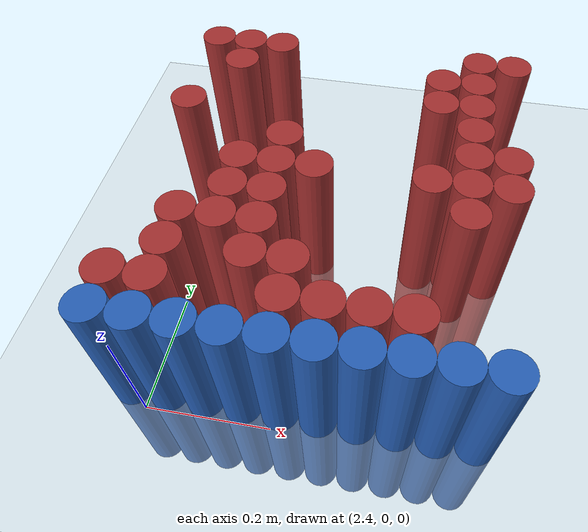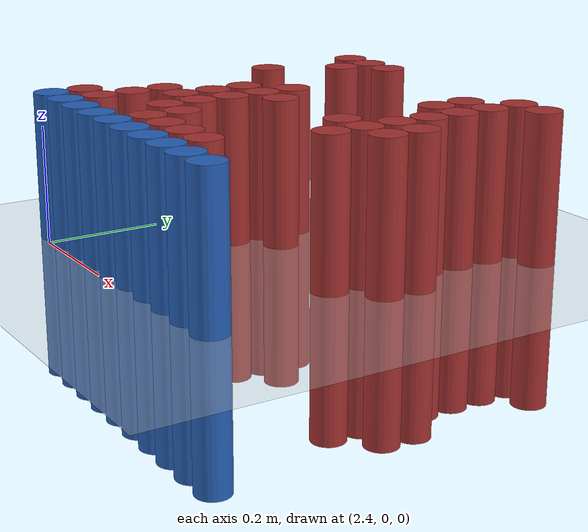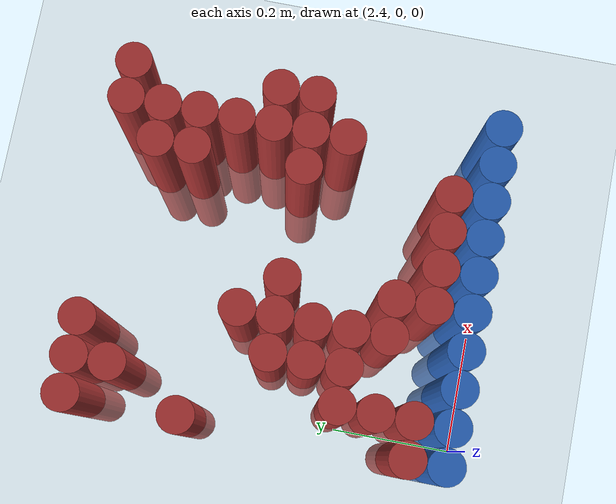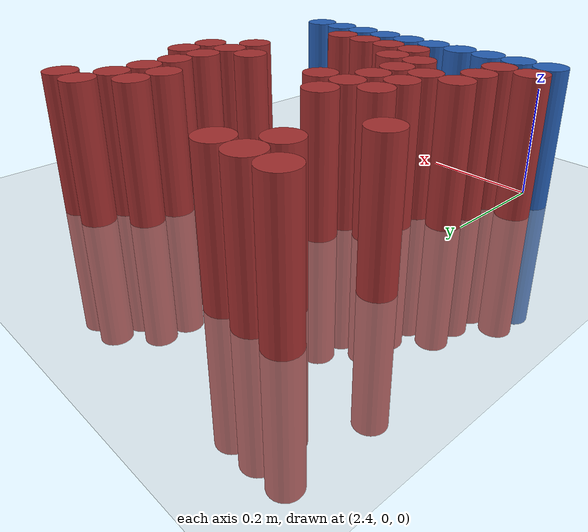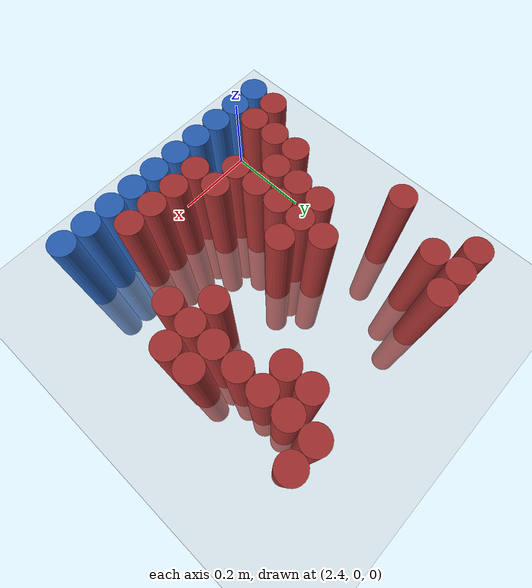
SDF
<sdf version="1.6">
 <world name="default">
  <model name="ground_plane">
   <static>1</static>
   <link name="link">
    <collision name="collision">
     <geometry><plane><normal>0 0 1</normal><size>100 100</size></plane></geometry>
     <surface><friction><ode><mu>100</mu><mu2>50</mu2></ode></friction></surface>
    </collision>
    <visual name="visual">
     <cast_shadows>0</cast_shadows>
     <geometry><plane><normal>0 0 1</normal><size>100 100</size></plane></geometry>
     <material>
      <script><uri>file://media/materials/scripts/gazebo.material</uri><name>Gazebo/Grey</name></script>
     </material>
    </visual>
   </link>
  </model>
  <model name="unit_cylinder_211">
   <static>1</static>
   <pose>2.370000 0.630000 0.000000 0.000000 0.000000 0.000000</pose>
   <link name="link">
    <inertial>
     <mass>1</mass>
     <inertia><ixx>0.145833</ixx><ixy>0</ixy><ixz>0</ixz><iyy>0.145833</iyy><iyz>0</iyz><izz>0.125</izz></inertia>
    </inertial>
    <collision name="collision">
     <geometry><cylinder><radius>0.030000</radius><length>0.5</length></cylinder></geometry>
    </collision>
    <visual name="visual">
     <geometry><cylinder><radius>0.030000</radius><length>0.5</length></cylinder></geometry>
     <material>
      <ambient>0.648000 0.192000 0.192000 1</ambient>
      <diffuse>0.648000 0.192000 0.192000 1</diffuse>
     </material>
     <material>
      <script><name>Gazebo/Grey</name><uri>file://media/materials/scripts/gazebo.material</uri></script>
     </material>
    </visual>
   </link>
  </model>
  <model name="unit_cylinder_212">
   <static>1</static>
   <pose>2.430000 0.630000 0.000000 0.000000 0.000000 0.000000</pose>
   <link name="link">
    <inertial>
     <mass>1</mass>
     <inertia><ixx>0.145833</ixx><ixy>0</ixy><ixz>0</ixz><iyy>0.145833</iyy><iyz>0</iyz><izz>0.125</izz></inertia>
    </inertial>
    <collision name="collision">
     <geometry><cylinder><radius>0.030000</radius><length>0.5</length></cylinder></geometry>
    </collision>
    <visual name="visual">
     <geometry><cylinder><radius>0.030000</radius><length>0.5</length></cylinder></geometry>
     <material>
      <ambient>0.648000 0.192000 0.192000 1</ambient>
      <diffuse>0.648000 0.192000 0.192000 1</diffuse>
     </material>
     <material>
      <script><name>Gazebo/Grey</name><uri>file://media/materials/scripts/gazebo.material</uri></script>
     </material>
    </visual>
   </link>
  </model>
  <model name="unit_cylinder_213">
   <static>1</static>
   <pose>2.490000 0.630000 0.000000 0.000000 0.000000 0.000000</pose>
   <link name="link">
    <inertial>
     <mass>1</mass>
     <inertia><ixx>0.145833</ixx><ixy>0</ixy><ixz>0</ixz><iyy>0.145833</iyy><iyz>0</iyz><izz>0.125</izz></inertia>
    </inertial>
    <collision name="collision">
     <geometry><cylinder><radius>0.030000</radius><length>0.5</length></cylinder></geometry>
    </collision>
    <visual name="visual">
     <geometry><cylinder><radius>0.030000</radius><length>0.5</length></cylinder></geometry>
     <material>
      <ambient>0.648000 0.192000 0.192000 1</ambient>
      <diffuse>0.648000 0.192000 0.192000 1</diffuse>
     </material>
     <material>
      <script><name>Gazebo/Grey</name><uri>file://media/materials/scripts/gazebo.material</uri></script>
     </material>
    </visual>
   </link>
  </model>
  <model name="unit_cylinder_214">
   <static>1</static>
   <pose>2.850000 0.630000 0.000000 0.000000 0.000000 0.000000</pose>
   <link name="link">
    <inertial>
     <mass>1</mass>
     <inertia><ixx>0.145833</ixx><ixy>0</ixy><ixz>0</ixz><iyy>0.145833</iyy><iyz>0</iyz><izz>0.125</izz></inertia>
    </inertial>
    <collision name="collision">
     <geometry><cylinder><radius>0.030000</radius><length>0.5</length></cylinder></geometry>
    </collision>
    <visual name="visual">
     <geometry><cylinder><radius>0.030000</radius><length>0.5</length></cylinder></geometry>
     <material>
      <ambient>0.648000 0.192000 0.192000 1</ambient>
      <diffuse>0.648000 0.192000 0.192000 1</diffuse>
     </material>
     <material>
      <script><name>Gazebo/Grey</name><uri>file://media/materials/scripts/gazebo.material</uri></script>
     </material>
    </visual>
   </link>
  </model>
  <model name="unit_cylinder_215">
   <static>1</static>
   <pose>2.910000 0.630000 0.000000 0.000000 0.000000 0.000000</pose>
   <link name="link">
    <inertial>
     <mass>1</mass>
     <inertia><ixx>0.145833</ixx><ixy>0</ixy><ixz>0</ixz><iyy>0.145833</iyy><iyz>0</iyz><izz>0.125</izz></inertia>
    </inertial>
    <collision name="collision">
     <geometry><cylinder><radius>0.030000</radius><length>0.5</length></cylinder></geometry>
    </collision>
    <visual name="visual">
     <geometry><cylinder><radius>0.030000</radius><length>0.5</length></cylinder></geometry>
     <material>
      <ambient>0.648000 0.192000 0.192000 1</ambient>
      <diffuse>0.648000 0.192000 0.192000 1</diffuse>
     </material>
     <material>
      <script><name>Gazebo/Grey</name><uri>file://media/materials/scripts/gazebo.material</uri></script>
     </material>
    </visual>
   </link>
  </model>
  <model name="unit_cylinder_226">
   <static>1</static>
   <pose>2.430000 0.570000 0.000000 0.000000 0.000000 0.000000</pose>
   <link name="link">
    <inertial>
     <mass>1</mass>
     <inertia><ixx>0.145833</ixx><ixy>0</ixy><ixz>0</ixz><iyy>0.145833</iyy><iyz>0</iyz><izz>0.125</izz></inertia>
    </inertial>
    <collision name="collision">
     <geometry><cylinder><radius>0.030000</radius><length>0.5</length></cylinder></geometry>
    </collision>
    <visual name="visual">
     <geometry><cylinder><radius>0.030000</radius><length>0.5</length></cylinder></geometry>
     <material>
      <ambient>0.648000 0.192000 0.192000 1</ambient>
      <diffuse>0.648000 0.192000 0.192000 1</diffuse>
     </material>
     <material>
      <script><name>Gazebo/Grey</name><uri>file://media/materials/scripts/gazebo.material</uri></script>
     </material>
    </visual>
   </link>
  </model>
  <model name="unit_cylinder_227">
   <static>1</static>
   <pose>2.790000 0.570000 0.000000 0.000000 0.000000 0.000000</pose>
   <link name="link">
    <inertial>
     <mass>1</mass>
     <inertia><ixx>0.145833</ixx><ixy>0</ixy><ixz>0</ixz><iyy>0.145833</iyy><iyz>0</iyz><izz>0.125</izz></inertia>
    </inertial>
    <collision name="collision">
     <geometry><cylinder><radius>0.030000</radius><length>0.5</length></cylinder></geometry>
    </collision>
    <visual name="visual">
     <geometry><cylinder><radius>0.030000</radius><length>0.5</length></cylinder></geometry>
     <material>
      <ambient>0.648000 0.192000 0.192000 1</ambient>
      <diffuse>0.648000 0.192000 0.192000 1</diffuse>
     </material>
     <material>
      <script><name>Gazebo/Grey</name><uri>file://media/materials/scripts/gazebo.material</uri></script>
     </material>
    </visual>
   </link>
  </model>
  <model name="unit_cylinder_228">
   <static>1</static>
   <pose>2.850000 0.570000 0.000000 0.000000 0.000000 0.000000</pose>
   <link name="link">
    <inertial>
     <mass>1</mass>
     <inertia><ixx>0.145833</ixx><ixy>0</ixy><ixz>0</ixz><iyy>0.145833</iyy><iyz>0</iyz><izz>0.125</izz></inertia>
    </inertial>
    <collision name="collision">
     <geometry><cylinder><radius>0.030000</radius><length>0.5</length></cylinder></geometry>
    </collision>
    <visual name="visual">
     <geometry><cylinder><radius>0.030000</radius><length>0.5</length></cylinder></geometry>
     <material>
      <ambient>0.648000 0.192000 0.192000 1</ambient>
      <diffuse>0.648000 0.192000 0.192000 1</diffuse>
     </material>
     <material>
      <script><name>Gazebo/Grey</name><uri>file://media/materials/scripts/gazebo.material</uri></script>
     </material>
    </visual>
   </link>
  </model>
  <model name="unit_cylinder_238">
   <static>1</static>
   <pose>2.790000 0.510000 0.000000 0.000000 0.000000 0.000000</pose>
   <link name="link">
    <inertial>
     <mass>1</mass>
     <inertia><ixx>0.145833</ixx><ixy>0</ixy><ixz>0</ixz><iyy>0.145833</iyy><iyz>0</iyz><izz>0.125</izz></inertia>
    </inertial>
    <collision name="collision">
     <geometry><cylinder><radius>0.030000</radius><length>0.5</length></cylinder></geometry>
    </collision>
    <visual name="visual">
     <geometry><cylinder><radius>0.030000</radius><length>0.5</length></cylinder></geometry>
     <material>
      <ambient>0.648000 0.192000 0.192000 1</ambient>
      <diffuse>0.648000 0.192000 0.192000 1</diffuse>
     </material>
     <material>
      <script><name>Gazebo/Grey</name><uri>file://media/materials/scripts/gazebo.material</uri></script>
     </material>
    </visual>
   </link>
  </model>
  <model name="unit_cylinder_239">
   <static>1</static>
   <pose>2.850000 0.510000 0.000000 0.000000 0.000000 0.000000</pose>
   <link name="link">
    <inertial>
     <mass>1</mass>
     <inertia><ixx>0.145833</ixx><ixy>0</ixy><ixz>0</ixz><iyy>0.145833</iyy><iyz>0</iyz><izz>0.125</izz></inertia>
    </inertial>
    <collision name="collision">
     <geometry><cylinder><radius>0.030000</radius><length>0.5</length></cylinder></geometry>
    </collision>
    <visual name="visual">
     <geometry><cylinder><radius>0.030000</radius><length>0.5</length></cylinder></geometry>
     <material>
      <ambient>0.648000 0.192000 0.192000 1</ambient>
      <diffuse>0.648000 0.192000 0.192000 1</diffuse>
     </material>
     <material>
      <script><name>Gazebo/Grey</name><uri>file://media/materials/scripts/gazebo.material</uri></script>
     </material>
    </visual>
   </link>
  </model>
  <model name="unit_cylinder_247">
   <static>1</static>
   <pose>2.370000 0.450000 0.000000 0.000000 0.000000 0.000000</pose>
   <link name="link">
    <inertial>
     <mass>1</mass>
     <inertia><ixx>0.145833</ixx><ixy>0</ixy><ixz>0</ixz><iyy>0.145833</iyy><iyz>0</iyz><izz>0.125</izz></inertia>
    </inertial>
    <collision name="collision">
     <geometry><cylinder><radius>0.030000</radius><length>0.5</length></cylinder></geometry>
    </collision>
    <visual name="visual">
     <geometry><cylinder><radius>0.030000</radius><length>0.5</length></cylinder></geometry>
     <material>
      <ambient>0.648000 0.192000 0.192000 1</ambient>
      <diffuse>0.648000 0.192000 0.192000 1</diffuse>
     </material>
     <material>
      <script><name>Gazebo/Grey</name><uri>file://media/materials/scripts/gazebo.material</uri></script>
     </material>
    </visual>
   </link>
  </model>
  <model name="unit_cylinder_248">
   <static>1</static>
   <pose>2.850000 0.450000 0.000000 0.000000 0.000000 0.000000</pose>
   <link name="link">
    <inertial>
     <mass>1</mass>
     <inertia><ixx>0.145833</ixx><ixy>0</ixy><ixz>0</ixz><iyy>0.145833</iyy><iyz>0</iyz><izz>0.125</izz></inertia>
    </inertial>
    <collision name="collision">
     <geometry><cylinder><radius>0.030000</radius><length>0.5</length></cylinder></geometry>
    </collision>
    <visual name="visual">
     <geometry><cylinder><radius>0.030000</radius><length>0.5</length></cylinder></geometry>
     <material>
      <ambient>0.648000 0.192000 0.192000 1</ambient>
      <diffuse>0.648000 0.192000 0.192000 1</diffuse>
     </material>
     <material>
      <script><name>Gazebo/Grey</name><uri>file://media/materials/scripts/gazebo.material</uri></script>
     </material>
    </visual>
   </link>
  </model>
  <model name="unit_cylinder_253">
   <static>1</static>
   <pose>2.550000 0.390000 0.000000 0.000000 0.000000 0.000000</pose>
   <link name="link">
    <inertial>
     <mass>1</mass>
     <inertia><ixx>0.145833</ixx><ixy>0</ixy><ixz>0</ixz><iyy>0.145833</iyy><iyz>0</iyz><izz>0.125</izz></inertia>
    </inertial>
    <collision name="collision">
     <geometry><cylinder><radius>0.030000</radius><length>0.5</length></cylinder></geometry>
    </collision>
    <visual name="visual">
     <geometry><cylinder><radius>0.030000</radius><length>0.5</length></cylinder></geometry>
     <material>
      <ambient>0.648000 0.192000 0.192000 1</ambient>
      <diffuse>0.648000 0.192000 0.192000 1</diffuse>
     </material>
     <material>
      <script><name>Gazebo/Grey</name><uri>file://media/materials/scripts/gazebo.material</uri></script>
     </material>
    </visual>
   </link>
  </model>
  <model name="unit_cylinder_254">
   <static>1</static>
   <pose>2.850000 0.390000 0.000000 0.000000 0.000000 0.000000</pose>
   <link name="link">
    <inertial>
     <mass>1</mass>
     <inertia><ixx>0.145833</ixx><ixy>0</ixy><ixz>0</ixz><iyy>0.145833</iyy><iyz>0</iyz><izz>0.125</izz></inertia>
    </inertial>
    <collision name="collision">
     <geometry><cylinder><radius>0.030000</radius><length>0.5</length></cylinder></geometry>
    </collision>
    <visual name="visual">
     <geometry><cylinder><radius>0.030000</radius><length>0.5</length></cylinder></geometry>
     <material>
      <ambient>0.648000 0.192000 0.192000 1</ambient>
      <diffuse>0.648000 0.192000 0.192000 1</diffuse>
     </material>
     <material>
      <script><name>Gazebo/Grey</name><uri>file://media/materials/scripts/gazebo.material</uri></script>
     </material>
    </visual>
   </link>
  </model>
  <model name="unit_cylinder_255">
   <static>1</static>
   <pose>2.910000 0.390000 0.000000 0.000000 0.000000 0.000000</pose>
   <link name="link">
    <inertial>
     <mass>1</mass>
     <inertia><ixx>0.145833</ixx><ixy>0</ixy><ixz>0</ixz><iyy>0.145833</iyy><iyz>0</iyz><izz>0.125</izz></inertia>
    </inertial>
    <collision name="collision">
     <geometry><cylinder><radius>0.030000</radius><length>0.5</length></cylinder></geometry>
    </collision>
    <visual name="visual">
     <geometry><cylinder><radius>0.030000</radius><length>0.5</length></cylinder></geometry>
     <material>
      <ambient>0.648000 0.192000 0.192000 1</ambient>
      <diffuse>0.648000 0.192000 0.192000 1</diffuse>
     </material>
     <material>
      <script><name>Gazebo/Grey</name><uri>file://media/materials/scripts/gazebo.material</uri></script>
     </material>
    </visual>
   </link>
  </model>
  <model name="unit_cylinder_258">
   <static>1</static>
   <pose>2.490000 0.330000 0.000000 0.000000 0.000000 0.000000</pose>
   <link name="link">
    <inertial>
     <mass>1</mass>
     <inertia><ixx>0.145833</ixx><ixy>0</ixy><ixz>0</ixz><iyy>0.145833</iyy><iyz>0</iyz><izz>0.125</izz></inertia>
    </inertial>
    <collision name="collision">
     <geometry><cylinder><radius>0.030000</radius><length>0.5</length></cylinder></geometry>
    </collision>
    <visual name="visual">
     <geometry><cylinder><radius>0.030000</radius><length>0.5</length></cylinder></geometry>
     <material>
      <ambient>0.648000 0.192000 0.192000 1</ambient>
      <diffuse>0.648000 0.192000 0.192000 1</diffuse>
     </material>
     <material>
      <script><name>Gazebo/Grey</name><uri>file://media/materials/scripts/gazebo.material</uri></script>
     </material>
    </visual>
   </link>
  </model>
  <model name="unit_cylinder_259">
   <static>1</static>
   <pose>2.550000 0.330000 0.000000 0.000000 0.000000 0.000000</pose>
   <link name="link">
    <inertial>
     <mass>1</mass>
     <inertia><ixx>0.145833</ixx><ixy>0</ixy><ixz>0</ixz><iyy>0.145833</iyy><iyz>0</iyz><izz>0.125</izz></inertia>
    </inertial>
    <collision name="collision">
     <geometry><cylinder><radius>0.030000</radius><length>0.5</length></cylinder></geometry>
    </collision>
    <visual name="visual">
     <geometry><cylinder><radius>0.030000</radius><length>0.5</length></cylinder></geometry>
     <material>
      <ambient>0.648000 0.192000 0.192000 1</ambient>
      <diffuse>0.648000 0.192000 0.192000 1</diffuse>
     </material>
     <material>
      <script><name>Gazebo/Grey</name><uri>file://media/materials/scripts/gazebo.material</uri></script>
     </material>
    </visual>
   </link>
  </model>
  <model name="unit_cylinder_260">
   <static>1</static>
   <pose>2.610000 0.330000 0.000000 0.000000 0.000000 0.000000</pose>
   <link name="link">
    <inertial>
     <mass>1</mass>
     <inertia><ixx>0.145833</ixx><ixy>0</ixy><ixz>0</ixz><iyy>0.145833</iyy><iyz>0</iyz><izz>0.125</izz></inertia>
    </inertial>
    <collision name="collision">
     <geometry><cylinder><radius>0.030000</radius><length>0.5</length></cylinder></geometry>
    </collision>
    <visual name="visual">
     <geometry><cylinder><radius>0.030000</radius><length>0.5</length></cylinder></geometry>
     <material>
      <ambient>0.648000 0.192000 0.192000 1</ambient>
      <diffuse>0.648000 0.192000 0.192000 1</diffuse>
     </material>
     <material>
      <script><name>Gazebo/Grey</name><uri>file://media/materials/scripts/gazebo.material</uri></script>
     </material>
    </visual>
   </link>
  </model>
  <model name="unit_cylinder_261">
   <static>1</static>
   <pose>2.790000 0.330000 0.000000 0.000000 0.000000 0.000000</pose>
   <link name="link">
    <inertial>
     <mass>1</mass>
     <inertia><ixx>0.145833</ixx><ixy>0</ixy><ixz>0</ixz><iyy>0.145833</iyy><iyz>0</iyz><izz>0.125</izz></inertia>
    </inertial>
    <collision name="collision">
     <geometry><cylinder><radius>0.030000</radius><length>0.5</length></cylinder></geometry>
    </collision>
    <visual name="visual">
     <geometry><cylinder><radius>0.030000</radius><length>0.5</length></cylinder></geometry>
     <material>
      <ambient>0.648000 0.192000 0.192000 1</ambient>
      <diffuse>0.648000 0.192000 0.192000 1</diffuse>
     </material>
     <material>
      <script><name>Gazebo/Grey</name><uri>file://media/materials/scripts/gazebo.material</uri></script>
     </material>
    </visual>
   </link>
  </model>
  <model name="unit_cylinder_262">
   <static>1</static>
   <pose>2.850000 0.330000 0.000000 0.000000 0.000000 0.000000</pose>
   <link name="link">
    <inertial>
     <mass>1</mass>
     <inertia><ixx>0.145833</ixx><ixy>0</ixy><ixz>0</ixz><iyy>0.145833</iyy><iyz>0</iyz><izz>0.125</izz></inertia>
    </inertial>
    <collision name="collision">
     <geometry><cylinder><radius>0.030000</radius><length>0.5</length></cylinder></geometry>
    </collision>
    <visual name="visual">
     <geometry><cylinder><radius>0.030000</radius><length>0.5</length></cylinder></geometry>
     <material>
      <ambient>0.648000 0.192000 0.192000 1</ambient>
      <diffuse>0.648000 0.192000 0.192000 1</diffuse>
     </material>
     <material>
      <script><name>Gazebo/Grey</name><uri>file://media/materials/scripts/gazebo.material</uri></script>
     </material>
    </visual>
   </link>
  </model>
  <model name="unit_cylinder_263">
   <static>1</static>
   <pose>2.910000 0.330000 0.000000 0.000000 0.000000 0.000000</pose>
   <link name="link">
    <inertial>
     <mass>1</mass>
     <inertia><ixx>0.145833</ixx><ixy>0</ixy><ixz>0</ixz><iyy>0.145833</iyy><iyz>0</iyz><izz>0.125</izz></inertia>
    </inertial>
    <collision name="collision">
     <geometry><cylinder><radius>0.030000</radius><length>0.5</length></cylinder></geometry>
    </collision>
    <visual name="visual">
     <geometry><cylinder><radius>0.030000</radius><length>0.5</length></cylinder></geometry>
     <material>
      <ambient>0.648000 0.192000 0.192000 1</ambient>
      <diffuse>0.648000 0.192000 0.192000 1</diffuse>
     </material>
     <material>
      <script><name>Gazebo/Grey</name><uri>file://media/materials/scripts/gazebo.material</uri></script>
     </material>
    </visual>
   </link>
  </model>
  <model name="unit_cylinder_266">
   <static>1</static>
   <pose>2.490000 0.270000 0.000000 0.000000 0.000000 0.000000</pose>
   <link name="link">
    <inertial>
     <mass>1</mass>
     <inertia><ixx>0.145833</ixx><ixy>0</ixy><ixz>0</ixz><iyy>0.145833</iyy><iyz>0</iyz><izz>0.125</izz></inertia>
    </inertial>
    <collision name="collision">
     <geometry><cylinder><radius>0.030000</radius><length>0.5</length></cylinder></geometry>
    </collision>
    <visual name="visual">
     <geometry><cylinder><radius>0.030000</radius><length>0.5</length></cylinder></geometry>
     <material>
      <ambient>0.648000 0.192000 0.192000 1</ambient>
      <diffuse>0.648000 0.192000 0.192000 1</diffuse>
     </material>
     <material>
      <script><name>Gazebo/Grey</name><uri>file://media/materials/scripts/gazebo.material</uri></script>
     </material>
    </visual>
   </link>
  </model>
  <model name="unit_cylinder_267">
   <static>1</static>
   <pose>2.550000 0.270000 0.000000 0.000000 0.000000 0.000000</pose>
   <link name="link">
    <inertial>
     <mass>1</mass>
     <inertia><ixx>0.145833</ixx><ixy>0</ixy><ixz>0</ixz><iyy>0.145833</iyy><iyz>0</iyz><izz>0.125</izz></inertia>
    </inertial>
    <collision name="collision">
     <geometry><cylinder><radius>0.030000</radius><length>0.5</length></cylinder></geometry>
    </collision>
    <visual name="visual">
     <geometry><cylinder><radius>0.030000</radius><length>0.5</length></cylinder></geometry>
     <material>
      <ambient>0.648000 0.192000 0.192000 1</ambient>
      <diffuse>0.648000 0.192000 0.192000 1</diffuse>
     </material>
     <material>
      <script><name>Gazebo/Grey</name><uri>file://media/materials/scripts/gazebo.material</uri></script>
     </material>
    </visual>
   </link>
  </model>
  <model name="unit_cylinder_268">
   <static>1</static>
   <pose>2.850000 0.270000 0.000000 0.000000 0.000000 0.000000</pose>
   <link name="link">
    <inertial>
     <mass>1</mass>
     <inertia><ixx>0.145833</ixx><ixy>0</ixy><ixz>0</ixz><iyy>0.145833</iyy><iyz>0</iyz><izz>0.125</izz></inertia>
    </inertial>
    <collision name="collision">
     <geometry><cylinder><radius>0.030000</radius><length>0.5</length></cylinder></geometry>
    </collision>
    <visual name="visual">
     <geometry><cylinder><radius>0.030000</radius><length>0.5</length></cylinder></geometry>
     <material>
      <ambient>0.648000 0.192000 0.192000 1</ambient>
      <diffuse>0.648000 0.192000 0.192000 1</diffuse>
     </material>
     <material>
      <script><name>Gazebo/Grey</name><uri>file://media/materials/scripts/gazebo.material</uri></script>
     </material>
    </visual>
   </link>
  </model>
  <model name="unit_cylinder_270">
   <static>1</static>
   <pose>2.430000 0.210000 0.000000 0.000000 0.000000 0.000000</pose>
   <link name="link">
    <inertial>
     <mass>1</mass>
     <inertia><ixx>0.145833</ixx><ixy>0</ixy><ixz>0</ixz><iyy>0.145833</iyy><iyz>0</iyz><izz>0.125</izz></inertia>
    </inertial>
    <collision name="collision">
     <geometry><cylinder><radius>0.030000</radius><length>0.5</length></cylinder></geometry>
    </collision>
    <visual name="visual">
     <geometry><cylinder><radius>0.030000</radius><length>0.5</length></cylinder></geometry>
     <material>
      <ambient>0.648000 0.192000 0.192000 1</ambient>
      <diffuse>0.648000 0.192000 0.192000 1</diffuse>
     </material>
     <material>
      <script><name>Gazebo/Grey</name><uri>file://media/materials/scripts/gazebo.material</uri></script>
     </material>
    </visual>
   </link>
  </model>
  <model name="unit_cylinder_271">
   <static>1</static>
   <pose>2.490000 0.210000 0.000000 0.000000 0.000000 0.000000</pose>
   <link name="link">
    <inertial>
     <mass>1</mass>
     <inertia><ixx>0.145833</ixx><ixy>0</ixy><ixz>0</ixz><iyy>0.145833</iyy><iyz>0</iyz><izz>0.125</izz></inertia>
    </inertial>
    <collision name="collision">
     <geometry><cylinder><radius>0.030000</radius><length>0.5</length></cylinder></geometry>
    </collision>
    <visual name="visual">
     <geometry><cylinder><radius>0.030000</radius><length>0.5</length></cylinder></geometry>
     <material>
      <ambient>0.648000 0.192000 0.192000 1</ambient>
      <diffuse>0.648000 0.192000 0.192000 1</diffuse>
     </material>
     <material>
      <script><name>Gazebo/Grey</name><uri>file://media/materials/scripts/gazebo.material</uri></script>
     </material>
    </visual>
   </link>
  </model>
  <model name="unit_cylinder_272">
   <static>1</static>
   <pose>2.550000 0.210000 0.000000 0.000000 0.000000 0.000000</pose>
   <link name="link">
    <inertial>
     <mass>1</mass>
     <inertia><ixx>0.145833</ixx><ixy>0</ixy><ixz>0</ixz><iyy>0.145833</iyy><iyz>0</iyz><izz>0.125</izz></inertia>
    </inertial>
    <collision name="collision">
     <geometry><cylinder><radius>0.030000</radius><length>0.5</length></cylinder></geometry>
    </collision>
    <visual name="visual">
     <geometry><cylinder><radius>0.030000</radius><length>0.5</length></cylinder></geometry>
     <material>
      <ambient>0.648000 0.192000 0.192000 1</ambient>
      <diffuse>0.648000 0.192000 0.192000 1</diffuse>
     </material>
     <material>
      <script><name>Gazebo/Grey</name><uri>file://media/materials/scripts/gazebo.material</uri></script>
     </material>
    </visual>
   </link>
  </model>
  <model name="unit_cylinder_273">
   <static>1</static>
   <pose>2.430000 0.150000 0.000000 0.000000 0.000000 0.000000</pose>
   <link name="link">
    <inertial>
     <mass>1</mass>
     <inertia><ixx>0.145833</ixx><ixy>0</ixy><ixz>0</ixz><iyy>0.145833</iyy><iyz>0</iyz><izz>0.125</izz></inertia>
    </inertial>
    <collision name="collision">
     <geometry><cylinder><radius>0.030000</radius><length>0.5</length></cylinder></geometry>
    </collision>
    <visual name="visual">
     <geometry><cylinder><radius>0.030000</radius><length>0.5</length></cylinder></geometry>
     <material>
      <ambient>0.648000 0.192000 0.192000 1</ambient>
      <diffuse>0.648000 0.192000 0.192000 1</diffuse>
     </material>
     <material>
      <script><name>Gazebo/Grey</name><uri>file://media/materials/scripts/gazebo.material</uri></script>
     </material>
    </visual>
   </link>
  </model>
  <model name="unit_cylinder_274">
   <static>1</static>
   <pose>2.550000 0.150000 0.000000 0.000000 0.000000 0.000000</pose>
   <link name="link">
    <inertial>
     <mass>1</mass>
     <inertia><ixx>0.145833</ixx><ixy>0</ixy><ixz>0</ixz><iyy>0.145833</iyy><iyz>0</iyz><izz>0.125</izz></inertia>
    </inertial>
    <collision name="collision">
     <geometry><cylinder><radius>0.030000</radius><length>0.5</length></cylinder></geometry>
    </collision>
    <visual name="visual">
     <geometry><cylinder><radius>0.030000</radius><length>0.5</length></cylinder></geometry>
     <material>
      <ambient>0.648000 0.192000 0.192000 1</ambient>
      <diffuse>0.648000 0.192000 0.192000 1</diffuse>
     </material>
     <material>
      <script><name>Gazebo/Grey</name><uri>file://media/materials/scripts/gazebo.material</uri></script>
     </material>
    </visual>
   </link>
  </model>
  <model name="unit_cylinder_275">
   <static>1</static>
   <pose>2.610000 0.150000 0.000000 0.000000 0.000000 0.000000</pose>
   <link name="link">
    <inertial>
     <mass>1</mass>
     <inertia><ixx>0.145833</ixx><ixy>0</ixy><ixz>0</ixz><iyy>0.145833</iyy><iyz>0</iyz><izz>0.125</izz></inertia>
    </inertial>
    <collision name="collision">
     <geometry><cylinder><radius>0.030000</radius><length>0.5</length></cylinder></geometry>
    </collision>
    <visual name="visual">
     <geometry><cylinder><radius>0.030000</radius><length>0.5</length></cylinder></geometry>
     <material>
      <ambient>0.648000 0.192000 0.192000 1</ambient>
      <diffuse>0.648000 0.192000 0.192000 1</diffuse>
     </material>
     <material>
      <script><name>Gazebo/Grey</name><uri>file://media/materials/scripts/gazebo.material</uri></script>
     </material>
    </visual>
   </link>
  </model>
  <model name="unit_cylinder_278">
   <static>1</static>
   <pose>2.370000 0.090000 0.000000 0.000000 0.000000 0.000000</pose>
   <link name="link">
    <inertial>
     <mass>1</mass>
     <inertia><ixx>0.145833</ixx><ixy>0</ixy><ixz>0</ixz><iyy>0.145833</iyy><iyz>0</iyz><izz>0.125</izz></inertia>
    </inertial>
    <collision name="collision">
     <geometry><cylinder><radius>0.030000</radius><length>0.5</length></cylinder></geometry>
    </collision>
    <visual name="visual">
     <geometry><cylinder><radius>0.030000</radius><length>0.5</length></cylinder></geometry>
     <material>
      <ambient>0.648000 0.192000 0.192000 1</ambient>
      <diffuse>0.648000 0.192000 0.192000 1</diffuse>
     </material>
     <material>
      <script><name>Gazebo/Grey</name><uri>file://media/materials/scripts/gazebo.material</uri></script>
     </material>
    </visual>
   </link>
  </model>
  <model name="unit_cylinder_279">
   <static>1</static>
   <pose>2.430000 0.090000 0.000000 0.000000 0.000000 0.000000</pose>
   <link name="link">
    <inertial>
     <mass>1</mass>
     <inertia><ixx>0.145833</ixx><ixy>0</ixy><ixz>0</ixz><iyy>0.145833</iyy><iyz>0</iyz><izz>0.125</izz></inertia>
    </inertial>
    <collision name="collision">
     <geometry><cylinder><radius>0.030000</radius><length>0.5</length></cylinder></geometry>
    </collision>
    <visual name="visual">
     <geometry><cylinder><radius>0.030000</radius><length>0.5</length></cylinder></geometry>
     <material>
      <ambient>0.648000 0.192000 0.192000 1</ambient>
      <diffuse>0.648000 0.192000 0.192000 1</diffuse>
     </material>
     <material>
      <script><name>Gazebo/Grey</name><uri>file://media/materials/scripts/gazebo.material</uri></script>
     </material>
    </visual>
   </link>
  </model>
  <model name="unit_cylinder_280">
   <static>1</static>
   <pose>2.610000 0.090000 0.000000 0.000000 0.000000 0.000000</pose>
   <link name="link">
    <inertial>
     <mass>1</mass>
     <inertia><ixx>0.145833</ixx><ixy>0</ixy><ixz>0</ixz><iyy>0.145833</iyy><iyz>0</iyz><izz>0.125</izz></inertia>
    </inertial>
    <collision name="collision">
     <geometry><cylinder><radius>0.030000</radius><length>0.5</length></cylinder></geometry>
    </collision>
    <visual name="visual">
     <geometry><cylinder><radius>0.030000</radius><length>0.5</length></cylinder></geometry>
     <material>
      <ambient>0.648000 0.192000 0.192000 1</ambient>
      <diffuse>0.648000 0.192000 0.192000 1</diffuse>
     </material>
     <material>
      <script><name>Gazebo/Grey</name><uri>file://media/materials/scripts/gazebo.material</uri></script>
     </material>
    </visual>
   </link>
  </model>
  <model name="unit_cylinder_281">
   <static>1</static>
   <pose>2.670000 0.090000 0.000000 0.000000 0.000000 0.000000</pose>
   <link name="link">
    <inertial>
     <mass>1</mass>
     <inertia><ixx>0.145833</ixx><ixy>0</ixy><ixz>0</ixz><iyy>0.145833</iyy><iyz>0</iyz><izz>0.125</izz></inertia>
    </inertial>
    <collision name="collision">
     <geometry><cylinder><radius>0.030000</radius><length>0.5</length></cylinder></geometry>
    </collision>
    <visual name="visual">
     <geometry><cylinder><radius>0.030000</radius><length>0.5</length></cylinder></geometry>
     <material>
      <ambient>0.648000 0.192000 0.192000 1</ambient>
      <diffuse>0.648000 0.192000 0.192000 1</diffuse>
     </material>
     <material>
      <script><name>Gazebo/Grey</name><uri>file://media/materials/scripts/gazebo.material</uri></script>
     </material>
    </visual>
   </link>
  </model>
  <model name="unit_cylinder_282">
   <static>1</static>
   <pose>2.730000 0.090000 0.000000 0.000000 0.000000 0.000000</pose>
   <link name="link">
    <inertial>
     <mass>1</mass>
     <inertia><ixx>0.145833</ixx><ixy>0</ixy><ixz>0</ixz><iyy>0.145833</iyy><iyz>0</iyz><izz>0.125</izz></inertia>
    </inertial>
    <collision name="collision">
     <geometry><cylinder><radius>0.030000</radius><length>0.5</length></cylinder></geometry>
    </collision>
    <visual name="visual">
     <geometry><cylinder><radius>0.030000</radius><length>0.5</length></cylinder></geometry>
     <material>
      <ambient>0.648000 0.192000 0.192000 1</ambient>
      <diffuse>0.648000 0.192000 0.192000 1</diffuse>
     </material>
     <material>
      <script><name>Gazebo/Grey</name><uri>file://media/materials/scripts/gazebo.material</uri></script>
     </material>
    </visual>
   </link>
  </model>
  <model name="unit_cylinder_283">
   <static>1</static>
   <pose>2.790000 0.090000 0.000000 0.000000 0.000000 0.000000</pose>
   <link name="link">
    <inertial>
     <mass>1</mass>
     <inertia><ixx>0.145833</ixx><ixy>0</ixy><ixz>0</ixz><iyy>0.145833</iyy><iyz>0</iyz><izz>0.125</izz></inertia>
    </inertial>
    <collision name="collision">
     <geometry><cylinder><radius>0.030000</radius><length>0.5</length></cylinder></geometry>
    </collision>
    <visual name="visual">
     <geometry><cylinder><radius>0.030000</radius><length>0.5</length></cylinder></geometry>
     <material>
      <ambient>0.648000 0.192000 0.192000 1</ambient>
      <diffuse>0.648000 0.192000 0.192000 1</diffuse>
     </material>
     <material>
      <script><name>Gazebo/Grey</name><uri>file://media/materials/scripts/gazebo.material</uri></script>
     </material>
    </visual>
   </link>
  </model>
  <model name="unit_cylinder_303">
   <static>1</static>
   <pose>2.370000 0.030000 0.000000 0.000000 0.000000 0.000000</pose>
   <link name="link">
    <inertial>
     <mass>1</mass>
     <inertia><ixx>0.145833</ixx><ixy>0</ixy><ixz>0</ixz><iyy>0.145833</iyy><iyz>0</iyz><izz>0.125</izz></inertia>
    </inertial>
    <collision name="collision">
     <geometry><cylinder><radius>0.030000</radius><length>0.5</length></cylinder></geometry>
    </collision>
    <visual name="visual">
     <geometry><cylinder><radius>0.030000</radius><length>0.5</length></cylinder></geometry>
     <material>
      <ambient>0.152000 0.379000 0.720000 1</ambient>
      <diffuse>0.152000 0.379000 0.720000 1</diffuse>
     </material>
     <material>
      <script><name>Gazebo/Grey</name><uri>file://media/materials/scripts/gazebo.material</uri></script>
     </material>
    </visual>
   </link>
  </model>
  <model name="unit_cylinder_304">
   <static>1</static>
   <pose>2.430000 0.030000 0.000000 0.000000 0.000000 0.000000</pose>
   <link name="link">
    <inertial>
     <mass>1</mass>
     <inertia><ixx>0.145833</ixx><ixy>0</ixy><ixz>0</ixz><iyy>0.145833</iyy><iyz>0</iyz><izz>0.125</izz></inertia>
    </inertial>
    <collision name="collision">
     <geometry><cylinder><radius>0.030000</radius><length>0.5</length></cylinder></geometry>
    </collision>
    <visual name="visual">
     <geometry><cylinder><radius>0.030000</radius><length>0.5</length></cylinder></geometry>
     <material>
      <ambient>0.152000 0.379000 0.720000 1</ambient>
      <diffuse>0.152000 0.379000 0.720000 1</diffuse>
     </material>
     <material>
      <script><name>Gazebo/Grey</name><uri>file://media/materials/scripts/gazebo.material</uri></script>
     </material>
    </visual>
   </link>
  </model>
  <model name="unit_cylinder_305">
   <static>1</static>
   <pose>2.490000 0.030000 0.000000 0.000000 0.000000 0.000000</pose>
   <link name="link">
    <inertial>
     <mass>1</mass>
     <inertia><ixx>0.145833</ixx><ixy>0</ixy><ixz>0</ixz><iyy>0.145833</iyy><iyz>0</iyz><izz>0.125</izz></inertia>
    </inertial>
    <collision name="collision">
     <geometry><cylinder><radius>0.030000</radius><length>0.5</length></cylinder></geometry>
    </collision>
    <visual name="visual">
     <geometry><cylinder><radius>0.030000</radius><length>0.5</length></cylinder></geometry>
     <material>
      <ambient>0.152000 0.379000 0.720000 1</ambient>
      <diffuse>0.152000 0.379000 0.720000 1</diffuse>
     </material>
     <material>
      <script><name>Gazebo/Grey</name><uri>file://media/materials/scripts/gazebo.material</uri></script>
     </material>
    </visual>
   </link>
  </model>
  <model name="unit_cylinder_306">
   <static>1</static>
   <pose>2.550000 0.030000 0.000000 0.000000 0.000000 0.000000</pose>
   <link name="link">
    <inertial>
     <mass>1</mass>
     <inertia><ixx>0.145833</ixx><ixy>0</ixy><ixz>0</ixz><iyy>0.145833</iyy><iyz>0</iyz><izz>0.125</izz></inertia>
    </inertial>
    <collision name="collision">
     <geometry><cylinder><radius>0.030000</radius><length>0.5</length></cylinder></geometry>
    </collision>
    <visual name="visual">
     <geometry><cylinder><radius>0.030000</radius><length>0.5</length></cylinder></geometry>
     <material>
      <ambient>0.152000 0.379000 0.720000 1</ambient>
      <diffuse>0.152000 0.379000 0.720000 1</diffuse>
     </material>
     <material>
      <script><name>Gazebo/Grey</name><uri>file://media/materials/scripts/gazebo.material</uri></script>
     </material>
    </visual>
   </link>
  </model>
  <model name="unit_cylinder_307">
   <static>1</static>
   <pose>2.610000 0.030000 0.000000 0.000000 0.000000 0.000000</pose>
   <link name="link">
    <inertial>
     <mass>1</mass>
     <inertia><ixx>0.145833</ixx><ixy>0</ixy><ixz>0</ixz><iyy>0.145833</iyy><iyz>0</iyz><izz>0.125</izz></inertia>
    </inertial>
    <collision name="collision">
     <geometry><cylinder><radius>0.030000</radius><length>0.5</length></cylinder></geometry>
    </collision>
    <visual name="visual">
     <geometry><cylinder><radius>0.030000</radius><length>0.5</length></cylinder></geometry>
     <material>
      <ambient>0.152000 0.379000 0.720000 1</ambient>
      <diffuse>0.152000 0.379000 0.720000 1</diffuse>
     </material>
     <material>
      <script><name>Gazebo/Grey</name><uri>file://media/materials/scripts/gazebo.material</uri></script>
     </material>
    </visual>
   </link>
  </model>
  <model name="unit_cylinder_308">
   <static>1</static>
   <pose>2.670000 0.030000 0.000000 0.000000 0.000000 0.000000</pose>
   <link name="link">
    <inertial>
     <mass>1</mass>
     <inertia><ixx>0.145833</ixx><ixy>0</ixy><ixz>0</ixz><iyy>0.145833</iyy><iyz>0</iyz><izz>0.125</izz></inertia>
    </inertial>
    <collision name="collision">
     <geometry><cylinder><radius>0.030000</radius><length>0.5</length></cylinder></geometry>
    </collision>
    <visual name="visual">
     <geometry><cylinder><radius>0.030000</radius><length>0.5</length></cylinder></geometry>
     <material>
      <ambient>0.152000 0.379000 0.720000 1</ambient>
      <diffuse>0.152000 0.379000 0.720000 1</diffuse>
     </material>
     <material>
      <script><name>Gazebo/Grey</name><uri>file://media/materials/scripts/gazebo.material</uri></script>
     </material>
    </visual>
   </link>
  </model>
  <model name="unit_cylinder_309">
   <static>1</static>
   <pose>2.730000 0.030000 0.000000 0.000000 0.000000 0.000000</pose>
   <link name="link">
    <inertial>
     <mass>1</mass>
     <inertia><ixx>0.145833</ixx><ixy>0</ixy><ixz>0</ixz><iyy>0.145833</iyy><iyz>0</iyz><izz>0.125</izz></inertia>
    </inertial>
    <collision name="collision">
     <geometry><cylinder><radius>0.030000</radius><length>0.5</length></cylinder></geometry>
    </collision>
    <visual name="visual">
     <geometry><cylinder><radius>0.030000</radius><length>0.5</length></cylinder></geometry>
     <material>
      <ambient>0.152000 0.379000 0.720000 1</ambient>
      <diffuse>0.152000 0.379000 0.720000 1</diffuse>
     </material>
     <material>
      <script><name>Gazebo/Grey</name><uri>file://media/materials/scripts/gazebo.material</uri></script>
     </material>
    </visual>
   </link>
  </model>
  <model name="unit_cylinder_310">
   <static>1</static>
   <pose>2.790000 0.030000 0.000000 0.000000 0.000000 0.000000</pose>
   <link name="link">
    <inertial>
     <mass>1</mass>
     <inertia><ixx>0.145833</ixx><ixy>0</ixy><ixz>0</ixz><iyy>0.145833</iyy><iyz>0</iyz><izz>0.125</izz></inertia>
    </inertial>
    <collision name="collision">
     <geometry><cylinder><radius>0.030000</radius><length>0.5</length></cylinder></geometry>
    </collision>
    <visual name="visual">
     <geometry><cylinder><radius>0.030000</radius><length>0.5</length></cylinder></geometry>
     <material>
      <ambient>0.152000 0.379000 0.720000 1</ambient>
      <diffuse>0.152000 0.379000 0.720000 1</diffuse>
     </material>
     <material>
      <script><name>Gazebo/Grey</name><uri>file://media/materials/scripts/gazebo.material</uri></script>
     </material>
    </visual>
   </link>
  </model>
  <model name="unit_cylinder_311">
   <static>1</static>
   <pose>2.850000 0.030000 0.000000 0.000000 0.000000 0.000000</pose>
   <link name="link">
    <inertial>
     <mass>1</mass>
     <inertia><ixx>0.145833</ixx><ixy>0</ixy><ixz>0</ixz><iyy>0.145833</iyy><iyz>0</iyz><izz>0.125</izz></inertia>
    </inertial>
    <collision name="collision">
     <geometry><cylinder><radius>0.030000</radius><length>0.5</length></cylinder></geometry>
    </collision>
    <visual name="visual">
     <geometry><cylinder><radius>0.030000</radius><length>0.5</length></cylinder></geometry>
     <material>
      <ambient>0.152000 0.379000 0.720000 1</ambient>
      <diffuse>0.152000 0.379000 0.720000 1</diffuse>
     </material>
     <material>
      <script><name>Gazebo/Grey</name><uri>file://media/materials/scripts/gazebo.material</uri></script>
     </material>
    </visual>
   </link>
  </model>
  <model name="unit_cylinder_312">
   <static>1</static>
   <pose>2.910000 0.030000 0.000000 0.000000 0.000000 0.000000</pose>
   <link name="link">
    <inertial>
     <mass>1</mass>
     <inertia><ixx>0.145833</ixx><ixy>0</ixy><ixz>0</ixz><iyy>0.145833</iyy><iyz>0</iyz><izz>0.125</izz></inertia>
    </inertial>
    <collision name="collision">
     <geometry><cylinder><radius>0.030000</radius><length>0.5</length></cylinder></geometry>
    </collision>
    <visual name="visual">
     <geometry><cylinder><radius>0.030000</radius><length>0.5</length></cylinder></geometry>
     <material>
      <ambient>0.152000 0.379000 0.720000 1</ambient>
      <diffuse>0.152000 0.379000 0.720000 1</diffuse>
     </material>
     <material>
      <script><name>Gazebo/Grey</name><uri>file://media/materials/scripts/gazebo.material</uri></script>
     </material>
    </visual>
   </link>
  </model>
 </world>
</sdf>
